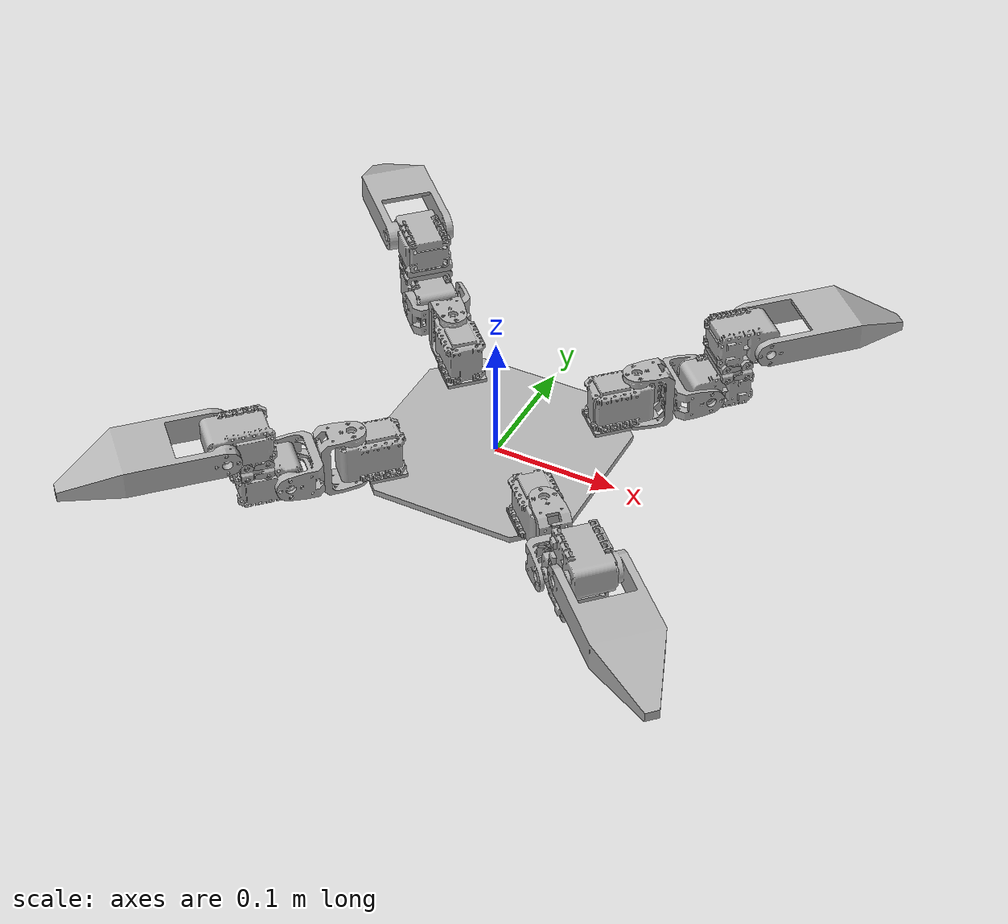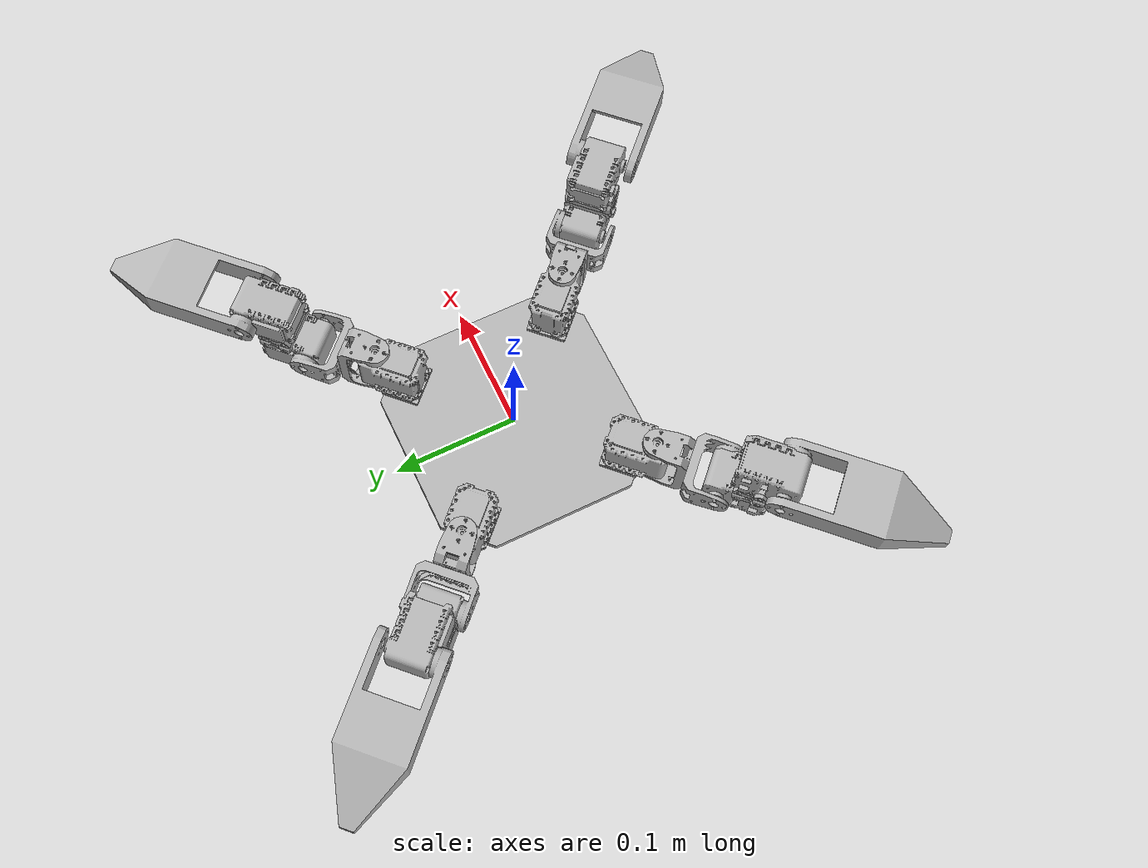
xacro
<?xml version="1.0" ?>
<robot name="Fred" xmlns:xacro="http://www.ros.org/wiki/xacro">

<xacro:include filename="$(find Fred_description)/urdf/materials.xacro" />
<xacro:include filename="$(find Fred_description)/urdf/Fred.trans" />
<xacro:include filename="$(find Fred_description)/urdf/Fred.gazebo" />
<link name="base_link">
  <inertial>
    <origin xyz="-6.332888513373975e-16 1.583222128343494e-17 0.0025" rpy="0 0 0"/>
    <mass value="0.17061404182695633"/>
    <inertia ixx="0.000396" iyy="0.000396" izz="0.000791" ixy="0.0" iyz="0.0" ixz="0.0"/>
  </inertial>
  <visual>
    <origin xyz="0 0 0" rpy="0 0 0"/>
    <geometry>
      <mesh filename="package://Fred_description/meshes/base_link.stl" scale="0.001 0.001 0.001"/>
    </geometry>
    <material name="silver"/>
  </visual>
  <collision>
    <origin xyz="0 0 0" rpy="0 0 0"/>
    <geometry>
      <mesh filename="package://Fred_description/meshes/base_link.stl" scale="0.001 0.001 0.001"/>
    </geometry>
  </collision>
</link>

<link name="U-Mount_v2__2__1">
  <inertial>
    <origin xyz="-0.0067448158266861374 -0.01234718417331375 0.0015000000000000508" rpy="0 0 0"/>
    <mass value="0.001617858655750926"/>
    <inertia ixx="0.0" iyy="0.0" izz="0.0" ixy="-0.0" iyz="-0.0" ixz="-0.0"/>
  </inertial>
  <visual>
    <origin xyz="-0.067838 0.048746 -0.005" rpy="0 0 0"/>
    <geometry>
      <mesh filename="package://Fred_description/meshes/U-Mount_v2__2__1.stl" scale="0.001 0.001 0.001"/>
    </geometry>
    <material name="silver"/>
  </visual>
  <collision>
    <origin xyz="-0.067838 0.048746 -0.005" rpy="0 0 0"/>
    <geometry>
      <mesh filename="package://Fred_description/meshes/U-Mount_v2__2__1.stl" scale="0.001 0.001 0.001"/>
    </geometry>
  </collision>
</link>

<link name="U-Mount_v2_1">
  <inertial>
    <origin xyz="0.012347184173313812 -0.006744815826686186 0.0015000000000000126" rpy="0 0 0"/>
    <mass value="0.001617858655750926"/>
    <inertia ixx="0.0" iyy="0.0" izz="0.0" ixy="0.0" iyz="0.0" ixz="0.0"/>
  </inertial>
  <visual>
    <origin xyz="-0.048746 -0.067838 -0.005" rpy="0 0 0"/>
    <geometry>
      <mesh filename="package://Fred_description/meshes/U-Mount_v2_1.stl" scale="0.001 0.001 0.001"/>
    </geometry>
    <material name="silver"/>
  </visual>
  <collision>
    <origin xyz="-0.048746 -0.067838 -0.005" rpy="0 0 0"/>
    <geometry>
      <mesh filename="package://Fred_description/meshes/U-Mount_v2_1.stl" scale="0.001 0.001 0.001"/>
    </geometry>
  </collision>
</link>

<link name="U-Mount_v2__1__1">
  <inertial>
    <origin xyz="0.006744815826686151 0.012347184173313812 0.001500000000000003" rpy="0 0 0"/>
    <mass value="0.001617858655750926"/>
    <inertia ixx="0.0" iyy="0.0" izz="0.0" ixy="-0.0" iyz="0.0" ixz="-0.0"/>
  </inertial>
  <visual>
    <origin xyz="0.067838 -0.048746 -0.005" rpy="0 0 0"/>
    <geometry>
      <mesh filename="package://Fred_description/meshes/U-Mount_v2__1__1.stl" scale="0.001 0.001 0.001"/>
    </geometry>
    <material name="silver"/>
  </visual>
  <collision>
    <origin xyz="0.067838 -0.048746 -0.005" rpy="0 0 0"/>
    <geometry>
      <mesh filename="package://Fred_description/meshes/U-Mount_v2__1__1.stl" scale="0.001 0.001 0.001"/>
    </geometry>
  </collision>
</link>

<link name="U-Mount_v2__3__1">
  <inertial>
    <origin xyz="-0.012347184173313736 0.006744815826686151 0.0015000000000000326" rpy="0 0 0"/>
    <mass value="0.001617858655750926"/>
    <inertia ixx="0.0" iyy="0.0" izz="0.0" ixy="0.0" iyz="0.0" ixz="-0.0"/>
  </inertial>
  <visual>
    <origin xyz="0.048746 0.067838 -0.005" rpy="0 0 0"/>
    <geometry>
      <mesh filename="package://Fred_description/meshes/U-Mount_v2__3__1.stl" scale="0.001 0.001 0.001"/>
    </geometry>
    <material name="silver"/>
  </visual>
  <collision>
    <origin xyz="0.048746 0.067838 -0.005" rpy="0 0 0"/>
    <geometry>
      <mesh filename="package://Fred_description/meshes/U-Mount_v2__3__1.stl" scale="0.001 0.001 0.001"/>
    </geometry>
  </collision>
</link>

<link name="AX-12A_v2__2__1">
  <inertial>
    <origin xyz="-0.008415635260180326 -0.010676357629209765 0.01645664033601793" rpy="0 0 0"/>
    <mass value="0.04345725719437503"/>
    <inertia ixx="9e-06" iyy="9e-06" izz="1.1e-05" ixy="3e-06" iyz="-0.0" ixz="0.0"/>
  </inertial>
  <visual>
    <origin xyz="-0.079152 0.06006 -0.008" rpy="0 0 0"/>
    <geometry>
      <mesh filename="package://Fred_description/meshes/AX-12A_v2__2__1.stl" scale="0.001 0.001 0.001"/>
    </geometry>
    <material name="silver"/>
  </visual>
  <collision>
    <origin xyz="-0.079152 0.06006 -0.008" rpy="0 0 0"/>
    <geometry>
      <mesh filename="package://Fred_description/meshes/AX-12A_v2__2__1.stl" scale="0.001 0.001 0.001"/>
    </geometry>
  </collision>
</link>

<link name="AX-12A_v2__3__1">
  <inertial>
    <origin xyz="0.010676357629209932 -0.008415635260180396 0.016456640336017986" rpy="0 0 0"/>
    <mass value="0.04345725719437503"/>
    <inertia ixx="9e-06" iyy="9e-06" izz="1.1e-05" ixy="-3e-06" iyz="0.0" ixz="0.0"/>
  </inertial>
  <visual>
    <origin xyz="-0.06006 -0.079152 -0.008" rpy="0 0 0"/>
    <geometry>
      <mesh filename="package://Fred_description/meshes/AX-12A_v2__3__1.stl" scale="0.001 0.001 0.001"/>
    </geometry>
    <material name="silver"/>
  </visual>
  <collision>
    <origin xyz="-0.06006 -0.079152 -0.008" rpy="0 0 0"/>
    <geometry>
      <mesh filename="package://Fred_description/meshes/AX-12A_v2__3__1.stl" scale="0.001 0.001 0.001"/>
    </geometry>
  </collision>
</link>

<link name="AX-12A_v2__10__1">
  <inertial>
    <origin xyz="-0.010676364739819713 -0.00841564237079008 0.016456640336017975" rpy="0 0 0"/>
    <mass value="0.04345725719437503"/>
    <inertia ixx="9e-06" iyy="9e-06" izz="1.1e-05" ixy="3e-06" iyz="0.0" ixz="-0.0"/>
  </inertial>
  <visual>
    <origin xyz="0.06006 -0.079152 -0.008" rpy="0 0 0"/>
    <geometry>
      <mesh filename="package://Fred_description/meshes/AX-12A_v2__10__1.stl" scale="0.001 0.001 0.001"/>
    </geometry>
    <material name="silver"/>
  </visual>
  <collision>
    <origin xyz="0.06006 -0.079152 -0.008" rpy="0 0 0"/>
    <geometry>
      <mesh filename="package://Fred_description/meshes/AX-12A_v2__10__1.stl" scale="0.001 0.001 0.001"/>
    </geometry>
  </collision>
</link>

<link name="AX-12A_v2__9__1">
  <inertial>
    <origin xyz="0.008415642370790205 -0.0106763647398197 0.01645664033601802" rpy="0 0 0"/>
    <mass value="0.04345725719437503"/>
    <inertia ixx="9e-06" iyy="9e-06" izz="1.1e-05" ixy="-3e-06" iyz="-0.0" ixz="-0.0"/>
  </inertial>
  <visual>
    <origin xyz="0.079152 0.06006 -0.008" rpy="0 0 0"/>
    <geometry>
      <mesh filename="package://Fred_description/meshes/AX-12A_v2__9__1.stl" scale="0.001 0.001 0.001"/>
    </geometry>
    <material name="silver"/>
  </visual>
  <collision>
    <origin xyz="0.079152 0.06006 -0.008" rpy="0 0 0"/>
    <geometry>
      <mesh filename="package://Fred_description/meshes/AX-12A_v2__9__1.stl" scale="0.001 0.001 0.001"/>
    </geometry>
  </collision>
</link>

<link name="F2_Frame_with_Horn_v3__4__1">
  <inertial>
    <origin xyz="-0.008866141921158532 -0.008868361448647291 -0.010847674499923382" rpy="0 0 0"/>
    <mass value="0.011624112572770259"/>
    <inertia ixx="5e-06" iyy="5e-06" izz="2e-06" ixy="-0.0" iyz="-0.0" ixz="-0.0"/>
  </inertial>
  <visual>
    <origin xyz="0.080036 0.080036 -0.03775" rpy="0 0 0"/>
    <geometry>
      <mesh filename="package://Fred_description/meshes/F2_Frame_with_Horn_v3__4__1.stl" scale="0.001 0.001 0.001"/>
    </geometry>
    <material name="silver"/>
  </visual>
  <collision>
    <origin xyz="0.080036 0.080036 -0.03775" rpy="0 0 0"/>
    <geometry>
      <mesh filename="package://Fred_description/meshes/F2_Frame_with_Horn_v3__4__1.stl" scale="0.001 0.001 0.001"/>
    </geometry>
  </collision>
</link>

<link name="F2_Frame_with_Horn_v3__5__1">
  <inertial>
    <origin xyz="0.00886836144864725 -0.008866141921158435 -0.010847674499923628" rpy="0 0 0"/>
    <mass value="0.011624112572770259"/>
    <inertia ixx="5e-06" iyy="5e-06" izz="2e-06" ixy="0.0" iyz="-0.0" ixz="0.0"/>
  </inertial>
  <visual>
    <origin xyz="-0.080036 0.080036 -0.03775" rpy="0 0 0"/>
    <geometry>
      <mesh filename="package://Fred_description/meshes/F2_Frame_with_Horn_v3__5__1.stl" scale="0.001 0.001 0.001"/>
    </geometry>
    <material name="silver"/>
  </visual>
  <collision>
    <origin xyz="-0.080036 0.080036 -0.03775" rpy="0 0 0"/>
    <geometry>
      <mesh filename="package://Fred_description/meshes/F2_Frame_with_Horn_v3__5__1.stl" scale="0.001 0.001 0.001"/>
    </geometry>
  </collision>
</link>

<link name="F2_Frame_with_Horn_v3__1__1">
  <inertial>
    <origin xyz="0.008866141921158657 0.008868361448647222 -0.010847674499923417" rpy="0 0 0"/>
    <mass value="0.011624112572770259"/>
    <inertia ixx="5e-06" iyy="5e-06" izz="2e-06" ixy="-0.0" iyz="0.0" ixz="0.0"/>
  </inertial>
  <visual>
    <origin xyz="-0.080036 -0.080036 -0.03775" rpy="0 0 0"/>
    <geometry>
      <mesh filename="package://Fred_description/meshes/F2_Frame_with_Horn_v3__1__1.stl" scale="0.001 0.001 0.001"/>
    </geometry>
    <material name="silver"/>
  </visual>
  <collision>
    <origin xyz="-0.080036 -0.080036 -0.03775" rpy="0 0 0"/>
    <geometry>
      <mesh filename="package://Fred_description/meshes/F2_Frame_with_Horn_v3__1__1.stl" scale="0.001 0.001 0.001"/>
    </geometry>
  </collision>
</link>

<link name="F2_Frame_with_Horn_v3_1">
  <inertial>
    <origin xyz="-0.008868361448647374 0.00886614192115863 -0.0108476744999234" rpy="0 0 0"/>
    <mass value="0.011624112572770259"/>
    <inertia ixx="5e-06" iyy="5e-06" izz="2e-06" ixy="0.0" iyz="0.0" ixz="-0.0"/>
  </inertial>
  <visual>
    <origin xyz="0.080036 -0.080036 -0.03775" rpy="0 0 0"/>
    <geometry>
      <mesh filename="package://Fred_description/meshes/F2_Frame_with_Horn_v3_1.stl" scale="0.001 0.001 0.001"/>
    </geometry>
    <material name="silver"/>
  </visual>
  <collision>
    <origin xyz="0.080036 -0.080036 -0.03775" rpy="0 0 0"/>
    <geometry>
      <mesh filename="package://Fred_description/meshes/F2_Frame_with_Horn_v3_1.stl" scale="0.001 0.001 0.001"/>
    </geometry>
  </collision>
</link>

<link name="F2_Frame_with_Horn_v3__6__1">
  <inertial>
    <origin xyz="-0.007429443557329038 -0.012312221768970719 -0.007998750641466844" rpy="0 0 0"/>
    <mass value="0.011624112572770259"/>
    <inertia ixx="4e-06" iyy="3e-06" izz="5e-06" ixy="1e-06" iyz="-0.0" ixz="-0.0"/>
  </inertial>
  <visual>
    <origin xyz="0.098774 0.098774 -0.03145" rpy="0 0 0"/>
    <geometry>
      <mesh filename="package://Fred_description/meshes/F2_Frame_with_Horn_v3__6__1.stl" scale="0.001 0.001 0.001"/>
    </geometry>
    <material name="silver"/>
  </visual>
  <collision>
    <origin xyz="0.098774 0.098774 -0.03145" rpy="0 0 0"/>
    <geometry>
      <mesh filename="package://Fred_description/meshes/F2_Frame_with_Horn_v3__6__1.stl" scale="0.001 0.001 0.001"/>
    </geometry>
  </collision>
</link>

<link name="F2_Frame_with_Horn_v3__2__1">
  <inertial>
    <origin xyz="-0.012312221768970899 0.007429443557329177 -0.007998750641466774" rpy="0 0 0"/>
    <mass value="0.011624112572770259"/>
    <inertia ixx="3e-06" iyy="4e-06" izz="5e-06" ixy="-1e-06" iyz="0.0" ixz="-0.0"/>
  </inertial>
  <visual>
    <origin xyz="0.098774 -0.098774 -0.03145" rpy="0 0 0"/>
    <geometry>
      <mesh filename="package://Fred_description/meshes/F2_Frame_with_Horn_v3__2__1.stl" scale="0.001 0.001 0.001"/>
    </geometry>
    <material name="silver"/>
  </visual>
  <collision>
    <origin xyz="0.098774 -0.098774 -0.03145" rpy="0 0 0"/>
    <geometry>
      <mesh filename="package://Fred_description/meshes/F2_Frame_with_Horn_v3__2__1.stl" scale="0.001 0.001 0.001"/>
    </geometry>
  </collision>
</link>

<link name="F2_Frame_with_Horn_v3__3__1">
  <inertial>
    <origin xyz="0.007429443557329191 0.01231222176897065 -0.00799875064146684" rpy="0 0 0"/>
    <mass value="0.011624112572770259"/>
    <inertia ixx="4e-06" iyy="3e-06" izz="5e-06" ixy="1e-06" iyz="0.0" ixz="0.0"/>
  </inertial>
  <visual>
    <origin xyz="-0.098774 -0.098774 -0.03145" rpy="0 0 0"/>
    <geometry>
      <mesh filename="package://Fred_description/meshes/F2_Frame_with_Horn_v3__3__1.stl" scale="0.001 0.001 0.001"/>
    </geometry>
    <material name="silver"/>
  </visual>
  <collision>
    <origin xyz="-0.098774 -0.098774 -0.03145" rpy="0 0 0"/>
    <geometry>
      <mesh filename="package://Fred_description/meshes/F2_Frame_with_Horn_v3__3__1.stl" scale="0.001 0.001 0.001"/>
    </geometry>
  </collision>
</link>

<link name="F2_Frame_with_Horn_v3__7__1">
  <inertial>
    <origin xyz="0.01231222176897058 -0.007429443557328802 -0.007998750641467135" rpy="0 0 0"/>
    <mass value="0.011624112572770259"/>
    <inertia ixx="3e-06" iyy="4e-06" izz="5e-06" ixy="-1e-06" iyz="-0.0" ixz="0.0"/>
  </inertial>
  <visual>
    <origin xyz="-0.098774 0.098774 -0.03145" rpy="0 0 0"/>
    <geometry>
      <mesh filename="package://Fred_description/meshes/F2_Frame_with_Horn_v3__7__1.stl" scale="0.001 0.001 0.001"/>
    </geometry>
    <material name="silver"/>
  </visual>
  <collision>
    <origin xyz="-0.098774 0.098774 -0.03145" rpy="0 0 0"/>
    <geometry>
      <mesh filename="package://Fred_description/meshes/F2_Frame_with_Horn_v3__7__1.stl" scale="0.001 0.001 0.001"/>
    </geometry>
  </collision>
</link>

<link name="AX-12A_v2__8__1">
  <inertial>
    <origin xyz="-0.018698694621870376 0.00010024829479443609 -3.1505644476972905e-07" rpy="0 0 0"/>
    <mass value="0.04345725719437503"/>
    <inertia ixx="9e-06" iyy="8e-06" izz="1.2e-05" ixy="-2e-06" iyz="-0.0" ixz="-0.0"/>
  </inertial>
  <visual>
    <origin xyz="0.107401 0.127624 -0.02345" rpy="0 0 0"/>
    <geometry>
      <mesh filename="package://Fred_description/meshes/AX-12A_v2__8__1.stl" scale="0.001 0.001 0.001"/>
    </geometry>
    <material name="silver"/>
  </visual>
  <collision>
    <origin xyz="0.107401 0.127624 -0.02345" rpy="0 0 0"/>
    <geometry>
      <mesh filename="package://Fred_description/meshes/AX-12A_v2__8__1.stl" scale="0.001 0.001 0.001"/>
    </geometry>
  </collision>
</link>

<link name="AX-12A_v2_1">
  <inertial>
    <origin xyz="0.00010024829479407527 0.01869869462187057 -3.1505644463095117e-07" rpy="0 0 0"/>
    <mass value="0.04345725719437503"/>
    <inertia ixx="8e-06" iyy="9e-06" izz="1.2e-05" ixy="2e-06" iyz="0.0" ixz="-0.0"/>
  </inertial>
  <visual>
    <origin xyz="0.127624 -0.107401 -0.02345" rpy="0 0 0"/>
    <geometry>
      <mesh filename="package://Fred_description/meshes/AX-12A_v2_1.stl" scale="0.001 0.001 0.001"/>
    </geometry>
    <material name="silver"/>
  </visual>
  <collision>
    <origin xyz="0.127624 -0.107401 -0.02345" rpy="0 0 0"/>
    <geometry>
      <mesh filename="package://Fred_description/meshes/AX-12A_v2_1.stl" scale="0.001 0.001 0.001"/>
    </geometry>
  </collision>
</link>

<link name="AX-12A_v2__1__1">
  <inertial>
    <origin xyz="0.018698694621870626 -0.00010024829479438058 -3.150564447350346e-07" rpy="0 0 0"/>
    <mass value="0.04345725719437503"/>
    <inertia ixx="9e-06" iyy="8e-06" izz="1.2e-05" ixy="-2e-06" iyz="0.0" ixz="0.0"/>
  </inertial>
  <visual>
    <origin xyz="-0.107401 -0.127624 -0.02345" rpy="0 0 0"/>
    <geometry>
      <mesh filename="package://Fred_description/meshes/AX-12A_v2__1__1.stl" scale="0.001 0.001 0.001"/>
    </geometry>
    <material name="silver"/>
  </visual>
  <collision>
    <origin xyz="-0.107401 -0.127624 -0.02345" rpy="0 0 0"/>
    <geometry>
      <mesh filename="package://Fred_description/meshes/AX-12A_v2__1__1.stl" scale="0.001 0.001 0.001"/>
    </geometry>
  </collision>
</link>

<link name="AX-12A_v2__7__1">
  <inertial>
    <origin xyz="-0.00010024829479432507 -0.018698694621870293 -3.1505644519994047e-07" rpy="0 0 0"/>
    <mass value="0.04345725719437503"/>
    <inertia ixx="8e-06" iyy="9e-06" izz="1.2e-05" ixy="2e-06" iyz="-0.0" ixz="0.0"/>
  </inertial>
  <visual>
    <origin xyz="-0.127624 0.107401 -0.02345" rpy="0 0 0"/>
    <geometry>
      <mesh filename="package://Fred_description/meshes/AX-12A_v2__7__1.stl" scale="0.001 0.001 0.001"/>
    </geometry>
    <material name="silver"/>
  </visual>
  <collision>
    <origin xyz="-0.127624 0.107401 -0.02345" rpy="0 0 0"/>
    <geometry>
      <mesh filename="package://Fred_description/meshes/AX-12A_v2__7__1.stl" scale="0.001 0.001 0.001"/>
    </geometry>
  </collision>
</link>

<link name="Connection_Mount_v2__2__1">
  <inertial>
    <origin xyz="-0.00565568348611295 0.016972046386872247 0.003095946043759727" rpy="0 0 0"/>
    <mass value="0.025354039664650947"/>
    <inertia ixx="3e-06" iyy="3e-06" izz="5e-06" ixy="1e-06" iyz="0.0" ixz="0.0"/>
  </inertial>
  <visual>
    <origin xyz="0.127553 0.150959 -0.03695" rpy="0 0 0"/>
    <geometry>
      <mesh filename="package://Fred_description/meshes/Connection_Mount_v2__2__1.stl" scale="0.001 0.001 0.001"/>
    </geometry>
    <material name="silver"/>
  </visual>
  <collision>
    <origin xyz="0.127553 0.150959 -0.03695" rpy="0 0 0"/>
    <geometry>
      <mesh filename="package://Fred_description/meshes/Connection_Mount_v2__2__1.stl" scale="0.001 0.001 0.001"/>
    </geometry>
  </collision>
</link>

<link name="Connection_Mount_v2__7__1">
  <inertial>
    <origin xyz="0.016972148681356394 -0.0056555811916346455 0.003095946043759734" rpy="0 0 0"/>
    <mass value="0.025354039664650947"/>
    <inertia ixx="3e-06" iyy="3e-06" izz="5e-06" ixy="1e-06" iyz="0.0" ixz="0.0"/>
  </inertial>
  <visual>
    <origin xyz="-0.116239 -0.139645 -0.03695" rpy="0 0 0"/>
    <geometry>
      <mesh filename="package://Fred_description/meshes/Connection_Mount_v2__7__1.stl" scale="0.001 0.001 0.001"/>
    </geometry>
    <material name="silver"/>
  </visual>
  <collision>
    <origin xyz="-0.116239 -0.139645 -0.03695" rpy="0 0 0"/>
    <geometry>
      <mesh filename="package://Fred_description/meshes/Connection_Mount_v2__7__1.stl" scale="0.001 0.001 0.001"/>
    </geometry>
  </collision>
</link>

<link name="Connection_Mount_v2__1__1">
  <inertial>
    <origin xyz="0.0056584188083653175 0.01696885131864395 0.0030959460437592276" rpy="0 0 0"/>
    <mass value="0.025354039664650947"/>
    <inertia ixx="3e-06" iyy="3e-06" izz="5e-06" ixy="-1e-06" iyz="-0.0" ixz="0.0"/>
  </inertial>
  <visual>
    <origin xyz="-0.128331 0.15018 -0.03695" rpy="0 0 0"/>
    <geometry>
      <mesh filename="package://Fred_description/meshes/Connection_Mount_v2__1__1.stl" scale="0.001 0.001 0.001"/>
    </geometry>
    <material name="silver"/>
  </visual>
  <collision>
    <origin xyz="-0.128331 0.15018 -0.03695" rpy="0 0 0"/>
    <geometry>
      <mesh filename="package://Fred_description/meshes/Connection_Mount_v2__1__1.stl" scale="0.001 0.001 0.001"/>
    </geometry>
  </collision>
</link>

<link name="Connection_Mount_v2__3__1">
  <inertial>
    <origin xyz="0.005658046386871868 0.01696968348611301 0.003095946043759887" rpy="0 0 0"/>
    <mass value="0.025354039664650947"/>
    <inertia ixx="3e-06" iyy="3e-06" izz="5e-06" ixy="-1e-06" iyz="-0.0" ixz="0.0"/>
  </inertial>
  <visual>
    <origin xyz="0.139645 -0.116239 -0.03695" rpy="0 0 0"/>
    <geometry>
      <mesh filename="package://Fred_description/meshes/Connection_Mount_v2__3__1.stl" scale="0.001 0.001 0.001"/>
    </geometry>
    <material name="silver"/>
  </visual>
  <collision>
    <origin xyz="0.139645 -0.116239 -0.03695" rpy="0 0 0"/>
    <geometry>
      <mesh filename="package://Fred_description/meshes/Connection_Mount_v2__3__1.stl" scale="0.001 0.001 0.001"/>
    </geometry>
  </collision>
</link>

<link name="Connection_Mount_v2__6__1">
  <inertial>
    <origin xyz="-0.005658046386874949 0.005658316513884265 0.002403413787430024" rpy="0 0 0"/>
    <mass value="0.025354039664650947"/>
    <inertia ixx="3e-06" iyy="3e-06" izz="5e-06" ixy="-1e-06" iyz="-0.0" ixz="0.0"/>
  </inertial>
  <visual>
    <origin xyz="-0.139645 0.138867 -0.04245" rpy="0 0 0"/>
    <geometry>
      <mesh filename="package://Fred_description/meshes/Connection_Mount_v2__6__1.stl" scale="0.001 0.001 0.001"/>
    </geometry>
    <material name="silver"/>
  </visual>
  <collision>
    <origin xyz="-0.139645 0.138867 -0.04245" rpy="0 0 0"/>
    <geometry>
      <mesh filename="package://Fred_description/meshes/Connection_Mount_v2__6__1.stl" scale="0.001 0.001 0.001"/>
    </geometry>
  </collision>
</link>

<link name="Connection_Mount_v2__5__1">
  <inertial>
    <origin xyz="-0.005658316513883904 -0.005658046386874949 0.0024034137874304404" rpy="0 0 0"/>
    <mass value="0.025354039664650947"/>
    <inertia ixx="3e-06" iyy="3e-06" izz="5e-06" ixy="1e-06" iyz="0.0" ixz="0.0"/>
  </inertial>
  <visual>
    <origin xyz="-0.138867 -0.139645 -0.04245" rpy="0 0 0"/>
    <geometry>
      <mesh filename="package://Fred_description/meshes/Connection_Mount_v2__5__1.stl" scale="0.001 0.001 0.001"/>
    </geometry>
    <material name="silver"/>
  </visual>
  <collision>
    <origin xyz="-0.138867 -0.139645 -0.04245" rpy="0 0 0"/>
    <geometry>
      <mesh filename="package://Fred_description/meshes/Connection_Mount_v2__5__1.stl" scale="0.001 0.001 0.001"/>
    </geometry>
  </collision>
</link>

<link name="Connection_Mount_v2_1">
  <inertial>
    <origin xyz="0.005658046386874727 -0.0056583165138840985 0.002403413787430475" rpy="0 0 0"/>
    <mass value="0.025354039664650947"/>
    <inertia ixx="3e-06" iyy="3e-06" izz="5e-06" ixy="-1e-06" iyz="0.0" ixz="-0.0"/>
  </inertial>
  <visual>
    <origin xyz="0.139645 -0.138867 -0.04245" rpy="0 0 0"/>
    <geometry>
      <mesh filename="package://Fred_description/meshes/Connection_Mount_v2_1.stl" scale="0.001 0.001 0.001"/>
    </geometry>
    <material name="silver"/>
  </visual>
  <collision>
    <origin xyz="0.139645 -0.138867 -0.04245" rpy="0 0 0"/>
    <geometry>
      <mesh filename="package://Fred_description/meshes/Connection_Mount_v2_1.stl" scale="0.001 0.001 0.001"/>
    </geometry>
  </collision>
</link>

<link name="Connection_Mount_v2__4__1">
  <inertial>
    <origin xyz="0.0056583165138840985 0.005658046386875087 0.0024034137874304334" rpy="0 0 0"/>
    <mass value="0.025354039664650947"/>
    <inertia ixx="3e-06" iyy="3e-06" izz="5e-06" ixy="1e-06" iyz="-0.0" ixz="-0.0"/>
  </inertial>
  <visual>
    <origin xyz="0.138867 0.139645 -0.04245" rpy="0 0 0"/>
    <geometry>
      <mesh filename="package://Fred_description/meshes/Connection_Mount_v2__4__1.stl" scale="0.001 0.001 0.001"/>
    </geometry>
    <material name="silver"/>
  </visual>
  <collision>
    <origin xyz="0.138867 0.139645 -0.04245" rpy="0 0 0"/>
    <geometry>
      <mesh filename="package://Fred_description/meshes/Connection_Mount_v2__4__1.stl" scale="0.001 0.001 0.001"/>
    </geometry>
  </collision>
</link>

<link name="AX-12A_v2__4__1">
  <inertial>
    <origin xyz="0.01276740767261142 0.010505649410724571 0.013499674887634129" rpy="0 0 0"/>
    <mass value="0.04345725719437503"/>
    <inertia ixx="9e-06" iyy="8e-06" izz="1.2e-05" ixy="2e-06" iyz="-0.0" ixz="0.0"/>
  </inertial>
  <visual>
    <origin xyz="-0.128331 0.15018 -0.04795" rpy="0 0 0"/>
    <geometry>
      <mesh filename="package://Fred_description/meshes/AX-12A_v2__4__1.stl" scale="0.001 0.001 0.001"/>
    </geometry>
    <material name="silver"/>
  </visual>
  <collision>
    <origin xyz="-0.128331 0.15018 -0.04795" rpy="0 0 0"/>
    <geometry>
      <mesh filename="package://Fred_description/meshes/AX-12A_v2__4__1.stl" scale="0.001 0.001 0.001"/>
    </geometry>
  </collision>
</link>

<link name="AX-12A_v2__5__1">
  <inertial>
    <origin xyz="-0.01050564941072396 0.012767407672610837 0.013499674887634698" rpy="0 0 0"/>
    <mass value="0.04345725719437503"/>
    <inertia ixx="8e-06" iyy="9e-06" izz="1.2e-05" ixy="-2e-06" iyz="0.0" ixz="0.0"/>
  </inertial>
  <visual>
    <origin xyz="-0.15018 -0.128331 -0.04795" rpy="0 0 0"/>
    <geometry>
      <mesh filename="package://Fred_description/meshes/AX-12A_v2__5__1.stl" scale="0.001 0.001 0.001"/>
    </geometry>
    <material name="silver"/>
  </visual>
  <collision>
    <origin xyz="-0.15018 -0.128331 -0.04795" rpy="0 0 0"/>
    <geometry>
      <mesh filename="package://Fred_description/meshes/AX-12A_v2__5__1.stl" scale="0.001 0.001 0.001"/>
    </geometry>
  </collision>
</link>

<link name="AX-12A_v2__6__1">
  <inertial>
    <origin xyz="-0.012767407672610975 -0.010505649410724516 0.013499674887634788" rpy="0 0 0"/>
    <mass value="0.04345725719437503"/>
    <inertia ixx="9e-06" iyy="8e-06" izz="1.2e-05" ixy="2e-06" iyz="0.0" ixz="-0.0"/>
  </inertial>
  <visual>
    <origin xyz="0.128331 -0.15018 -0.04795" rpy="0 0 0"/>
    <geometry>
      <mesh filename="package://Fred_description/meshes/AX-12A_v2__6__1.stl" scale="0.001 0.001 0.001"/>
    </geometry>
    <material name="silver"/>
  </visual>
  <collision>
    <origin xyz="0.128331 -0.15018 -0.04795" rpy="0 0 0"/>
    <geometry>
      <mesh filename="package://Fred_description/meshes/AX-12A_v2__6__1.stl" scale="0.001 0.001 0.001"/>
    </geometry>
  </collision>
</link>

<link name="AX-12A_v2__11__1">
  <inertial>
    <origin xyz="0.010505649410724155 -0.012767407672610809 0.01349967488763467" rpy="0 0 0"/>
    <mass value="0.04345725719437503"/>
    <inertia ixx="8e-06" iyy="9e-06" izz="1.2e-05" ixy="-2e-06" iyz="-0.0" ixz="-0.0"/>
  </inertial>
  <visual>
    <origin xyz="0.15018 0.128331 -0.04795" rpy="0 0 0"/>
    <geometry>
      <mesh filename="package://Fred_description/meshes/AX-12A_v2__11__1.stl" scale="0.001 0.001 0.001"/>
    </geometry>
    <material name="silver"/>
  </visual>
  <collision>
    <origin xyz="0.15018 0.128331 -0.04795" rpy="0 0 0"/>
    <geometry>
      <mesh filename="package://Fred_description/meshes/AX-12A_v2__11__1.stl" scale="0.001 0.001 0.001"/>
    </geometry>
  </collision>
</link>

<link name="Finger_with_Horn_v3__2__1">
  <inertial>
    <origin xyz="-0.054270581194146655 -0.03476621990377737 -0.0016312128257605918" rpy="0 0 0"/>
    <mass value="0.06747788765266144"/>
    <inertia ixx="4.3e-05" iyy="4.7e-05" izz="8.3e-05" ixy="-2.2e-05" iyz="-4e-06" ixz="-4e-06"/>
  </inertial>
  <visual>
    <origin xyz="0.139574 0.159798 -0.06145" rpy="0 0 0"/>
    <geometry>
      <mesh filename="package://Fred_description/meshes/Finger_with_Horn_v3__2__1.stl" scale="0.001 0.001 0.001"/>
    </geometry>
    <material name="silver"/>
  </visual>
  <collision>
    <origin xyz="0.139574 0.159798 -0.06145" rpy="0 0 0"/>
    <geometry>
      <mesh filename="package://Fred_description/meshes/Finger_with_Horn_v3__2__1.stl" scale="0.001 0.001 0.001"/>
    </geometry>
  </collision>
</link>

<link name="Finger_with_Horn_v3__1__1">
  <inertial>
    <origin xyz="0.03476621990377837 -0.05427058119414599 -0.0016312128257624375" rpy="0 0 0"/>
    <mass value="0.06747788765266144"/>
    <inertia ixx="4.7e-05" iyy="4.3e-05" izz="8.3e-05" ixy="2.2e-05" iyz="-4e-06" ixz="4e-06"/>
  </inertial>
  <visual>
    <origin xyz="-0.159798 0.139574 -0.06145" rpy="0 0 0"/>
    <geometry>
      <mesh filename="package://Fred_description/meshes/Finger_with_Horn_v3__1__1.stl" scale="0.001 0.001 0.001"/>
    </geometry>
    <material name="silver"/>
  </visual>
  <collision>
    <origin xyz="-0.159798 0.139574 -0.06145" rpy="0 0 0"/>
    <geometry>
      <mesh filename="package://Fred_description/meshes/Finger_with_Horn_v3__1__1.stl" scale="0.001 0.001 0.001"/>
    </geometry>
  </collision>
</link>

<link name="Finger_with_Horn_v3__3__1">
  <inertial>
    <origin xyz="0.054270581194147155 0.034766219903777484 -0.0016312128257606542" rpy="0 0 0"/>
    <mass value="0.06747788765266144"/>
    <inertia ixx="4.3e-05" iyy="4.7e-05" izz="8.3e-05" ixy="-2.2e-05" iyz="4e-06" ixz="4e-06"/>
  </inertial>
  <visual>
    <origin xyz="-0.139574 -0.159798 -0.06145" rpy="0 0 0"/>
    <geometry>
      <mesh filename="package://Fred_description/meshes/Finger_with_Horn_v3__3__1.stl" scale="0.001 0.001 0.001"/>
    </geometry>
    <material name="silver"/>
  </visual>
  <collision>
    <origin xyz="-0.139574 -0.159798 -0.06145" rpy="0 0 0"/>
    <geometry>
      <mesh filename="package://Fred_description/meshes/Finger_with_Horn_v3__3__1.stl" scale="0.001 0.001 0.001"/>
    </geometry>
  </collision>
</link>

<link name="Finger_with_Horn_v3_1">
  <inertial>
    <origin xyz="-0.03476621990377776 0.054270581194146156 -0.0016312128257595163" rpy="0 0 0"/>
    <mass value="0.06747788765266144"/>
    <inertia ixx="4.7e-05" iyy="4.3e-05" izz="8.3e-05" ixy="2.2e-05" iyz="4e-06" ixz="-4e-06"/>
  </inertial>
  <visual>
    <origin xyz="0.159798 -0.139574 -0.06145" rpy="0 0 0"/>
    <geometry>
      <mesh filename="package://Fred_description/meshes/Finger_with_Horn_v3_1.stl" scale="0.001 0.001 0.001"/>
    </geometry>
    <material name="silver"/>
  </visual>
  <collision>
    <origin xyz="0.159798 -0.139574 -0.06145" rpy="0 0 0"/>
    <geometry>
      <mesh filename="package://Fred_description/meshes/Finger_with_Horn_v3_1.stl" scale="0.001 0.001 0.001"/>
    </geometry>
  </collision>
</link>

<joint name="Rigid 1" type="fixed">
  <origin xyz="0.067838 -0.048746 0.005" rpy="0 0 0"/>
  <parent link="base_link"/>
  <child link="U-Mount_v2__2__1"/>
</joint>

<joint name="Rigid 2" type="fixed">
  <origin xyz="0.048746 0.067838 0.005" rpy="0 0 0"/>
  <parent link="base_link"/>
  <child link="U-Mount_v2_1"/>
</joint>

<joint name="Rigid 3" type="fixed">
  <origin xyz="-0.067838 0.048746 0.005" rpy="0 0 0"/>
  <parent link="base_link"/>
  <child link="U-Mount_v2__1__1"/>
</joint>

<joint name="Rigid 4" type="fixed">
  <origin xyz="-0.048746 -0.067838 0.005" rpy="0 0 0"/>
  <parent link="base_link"/>
  <child link="U-Mount_v2__3__1"/>
</joint>

<joint name="Rigid 5" type="fixed">
  <origin xyz="0.011314 -0.011314 0.003" rpy="0 0 0"/>
  <parent link="U-Mount_v2__2__1"/>
  <child link="AX-12A_v2__2__1"/>
</joint>

<joint name="Rigid 6" type="fixed">
  <origin xyz="0.011314 0.011314 0.003" rpy="0 0 0"/>
  <parent link="U-Mount_v2_1"/>
  <child link="AX-12A_v2__3__1"/>
</joint>

<joint name="Rigid 7" type="fixed">
  <origin xyz="0.007778 0.030406 0.003" rpy="0 0 0"/>
  <parent link="U-Mount_v2__1__1"/>
  <child link="AX-12A_v2__10__1"/>
</joint>

<joint name="Rigid 8" type="fixed">
  <origin xyz="-0.030406 0.007778 0.003" rpy="0 0 0"/>
  <parent link="U-Mount_v2__3__1"/>
  <child link="AX-12A_v2__9__1"/>
</joint>

<joint name="Revolute 9" type="revolute">
  <origin xyz="-0.000884 -0.019976 0.02975" rpy="0 0 0"/>
  <parent link="AX-12A_v2__9__1"/>
  <child link="F2_Frame_with_Horn_v3__4__1"/>
  <axis xyz="0.0 -0.0 1.0"/>
  <limit upper="1.745329" lower="-1.745329" effort="100" velocity="100"/>
</joint>

<joint name="Revolute 10" type="revolute">
  <origin xyz="0.000884 -0.019976 0.02975" rpy="0 0 0"/>
  <parent link="AX-12A_v2__2__1"/>
  <child link="F2_Frame_with_Horn_v3__5__1"/>
  <axis xyz="0.0 -0.0 1.0"/>
  <limit upper="1.745329" lower="-1.745329" effort="100" velocity="100"/>
</joint>

<joint name="Revolute 11" type="revolute">
  <origin xyz="0.019976 0.000884 0.02975" rpy="0 0 0"/>
  <parent link="AX-12A_v2__3__1"/>
  <child link="F2_Frame_with_Horn_v3__1__1"/>
  <axis xyz="-0.0 0.0 1.0"/>
  <limit upper="1.745329" lower="-1.745329" effort="100" velocity="100"/>
</joint>

<joint name="Revolute 12" type="revolute">
  <origin xyz="-0.019976 0.000884 0.02975" rpy="0 0 0"/>
  <parent link="AX-12A_v2__10__1"/>
  <child link="F2_Frame_with_Horn_v3_1"/>
  <axis xyz="-0.0 -0.0 1.0"/>
  <limit upper="1.745329" lower="-1.745329" effort="100" velocity="100"/>
</joint>

<joint name="Rigid 13" type="fixed">
  <origin xyz="-0.018738 -0.018738 -0.0063" rpy="0 0 0"/>
  <parent link="F2_Frame_with_Horn_v3__4__1"/>
  <child link="F2_Frame_with_Horn_v3__6__1"/>
</joint>

<joint name="Rigid 14" type="fixed">
  <origin xyz="-0.018738 0.018738 -0.0063" rpy="0 0 0"/>
  <parent link="F2_Frame_with_Horn_v3_1"/>
  <child link="F2_Frame_with_Horn_v3__2__1"/>
</joint>

<joint name="Rigid 15" type="fixed">
  <origin xyz="0.018738 0.018738 -0.0063" rpy="0 0 0"/>
  <parent link="F2_Frame_with_Horn_v3__1__1"/>
  <child link="F2_Frame_with_Horn_v3__3__1"/>
</joint>

<joint name="Rigid 16" type="fixed">
  <origin xyz="0.018738 -0.018738 -0.0063" rpy="0 0 0"/>
  <parent link="F2_Frame_with_Horn_v3__5__1"/>
  <child link="F2_Frame_with_Horn_v3__7__1"/>
</joint>

<joint name="Revolute 17" type="revolute">
  <origin xyz="-0.008627 -0.02885 -0.008" rpy="0 0 0"/>
  <parent link="F2_Frame_with_Horn_v3__6__1"/>
  <child link="AX-12A_v2__8__1"/>
  <axis xyz="-0.707107 0.707107 0.0"/>
  <limit upper="1.745329" lower="-1.919862" effort="100" velocity="100"/>
</joint>

<joint name="Revolute 18" type="revolute">
  <origin xyz="-0.02885 0.008627 -0.008" rpy="0 0 0"/>
  <parent link="F2_Frame_with_Horn_v3__2__1"/>
  <child link="AX-12A_v2_1"/>
  <axis xyz="0.707107 0.707107 0.0"/>
  <limit upper="1.745329" lower="-1.745329" effort="100" velocity="100"/>
</joint>

<joint name="Revolute 19" type="revolute">
  <origin xyz="0.008627 0.02885 -0.008" rpy="0 0 0"/>
  <parent link="F2_Frame_with_Horn_v3__3__1"/>
  <child link="AX-12A_v2__1__1"/>
  <axis xyz="0.707107 -0.707107 0.0"/>
  <limit upper="1.745329" lower="-1.745329" effort="100" velocity="100"/>
</joint>

<joint name="Revolute 20" type="revolute">
  <origin xyz="0.02885 -0.008627 -0.008" rpy="0 0 0"/>
  <parent link="F2_Frame_with_Horn_v3__7__1"/>
  <child link="AX-12A_v2__7__1"/>
  <axis xyz="-0.707107 -0.707107 0.0"/>
  <limit upper="1.745329" lower="-1.745329" effort="100" velocity="100"/>
</joint>

<joint name="Rigid 21" type="fixed">
  <origin xyz="-0.020152 -0.023335 0.0135" rpy="0 0 0"/>
  <parent link="AX-12A_v2__8__1"/>
  <child link="Connection_Mount_v2__2__1"/>
</joint>

<joint name="Rigid 22" type="fixed">
  <origin xyz="0.008838 0.012021 0.0135" rpy="0 0 0"/>
  <parent link="AX-12A_v2__1__1"/>
  <child link="Connection_Mount_v2__7__1"/>
</joint>

<joint name="Rigid 23" type="fixed">
  <origin xyz="0.000707 -0.042779 0.0135" rpy="0 0 0"/>
  <parent link="AX-12A_v2__7__1"/>
  <child link="Connection_Mount_v2__1__1"/>
</joint>

<joint name="Rigid 24" type="fixed">
  <origin xyz="-0.012021 0.008838 0.0135" rpy="0 0 0"/>
  <parent link="AX-12A_v2_1"/>
  <child link="Connection_Mount_v2__3__1"/>
</joint>

<joint name="Rigid 25" type="fixed">
  <origin xyz="0.011314 0.011313 0.0055" rpy="0 0 0"/>
  <parent link="Connection_Mount_v2__1__1"/>
  <child link="Connection_Mount_v2__6__1"/>
</joint>

<joint name="Rigid 26" type="fixed">
  <origin xyz="0.022628 0.0 0.0055" rpy="0 0 0"/>
  <parent link="Connection_Mount_v2__7__1"/>
  <child link="Connection_Mount_v2__5__1"/>
</joint>

<joint name="Rigid 27" type="fixed">
  <origin xyz="0.0 0.022628 0.0055" rpy="0 0 0"/>
  <parent link="Connection_Mount_v2__3__1"/>
  <child link="Connection_Mount_v2_1"/>
</joint>

<joint name="Rigid 28" type="fixed">
  <origin xyz="-0.011314 0.011314 0.0055" rpy="0 0 0"/>
  <parent link="Connection_Mount_v2__2__1"/>
  <child link="Connection_Mount_v2__4__1"/>
</joint>

<joint name="Rigid 29" type="fixed">
  <origin xyz="-0.011314 -0.011313 0.0055" rpy="0 0 0"/>
  <parent link="Connection_Mount_v2__6__1"/>
  <child link="AX-12A_v2__4__1"/>
</joint>

<joint name="Rigid 30" type="fixed">
  <origin xyz="0.011313 -0.011314 0.0055" rpy="0 0 0"/>
  <parent link="Connection_Mount_v2__5__1"/>
  <child link="AX-12A_v2__5__1"/>
</joint>

<joint name="Rigid 31" type="fixed">
  <origin xyz="0.011314 0.011313 0.0055" rpy="0 0 0"/>
  <parent link="Connection_Mount_v2_1"/>
  <child link="AX-12A_v2__6__1"/>
</joint>

<joint name="Rigid 32" type="fixed">
  <origin xyz="-0.011313 0.011314 0.0055" rpy="0 0 0"/>
  <parent link="Connection_Mount_v2__4__1"/>
  <child link="AX-12A_v2__11__1"/>
</joint>

<joint name="Revolute 33" type="revolute">
  <origin xyz="0.010606 -0.031467 0.0135" rpy="0 0 0"/>
  <parent link="AX-12A_v2__11__1"/>
  <child link="Finger_with_Horn_v3__2__1"/>
  <axis xyz="0.707107 -0.707107 0.0"/>
  <limit upper="1.745329" lower="-2.356194" effort="100" velocity="100"/>
</joint>

<joint name="Revolute 34" type="revolute">
  <origin xyz="0.031467 0.010606 0.0135" rpy="0 0 0"/>
  <parent link="AX-12A_v2__4__1"/>
  <child link="Finger_with_Horn_v3__1__1"/>
  <axis xyz="0.707107 0.707107 -0.0"/>
  <limit upper="1.745329" lower="-2.356194" effort="100" velocity="100"/>
</joint>

<joint name="Revolute 35" type="revolute">
  <origin xyz="-0.010606 0.031467 0.0135" rpy="0 0 0"/>
  <parent link="AX-12A_v2__5__1"/>
  <child link="Finger_with_Horn_v3__3__1"/>
  <axis xyz="-0.707107 0.707107 0.0"/>
  <limit upper="1.745329" lower="-2.356194" effort="100" velocity="100"/>
</joint>

<joint name="Revolute 36" type="revolute">
  <origin xyz="-0.031467 -0.010606 0.0135" rpy="0 0 0"/>
  <parent link="AX-12A_v2__6__1"/>
  <child link="Finger_with_Horn_v3_1"/>
  <axis xyz="-0.707107 -0.707107 -0.0"/>
  <limit upper="1.745329" lower="-2.356194" effort="100" velocity="100"/>
</joint>

</robot>

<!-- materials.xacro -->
<robot name="Fred" xmlns:xacro="http://www.ros.org/wiki/xacro" >

<material name="silver">
  <color rgba="0.700 0.700 0.700 1.000"/>
</material>

</robot>

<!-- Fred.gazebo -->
<robot name="Fred" xmlns:xacro="http://www.ros.org/wiki/xacro" >

<xacro:property name="body_color" value="Gazebo/Silver" />

<gazebo>
  <plugin name="control" filename="libgazebo_ros_control.so"/>
</gazebo>
<gazebo reference="base_link">
  <material>${body_color}</material>
  <mu1>0.2</mu1>
  <mu2>0.2</mu2>
  <selfCollide>true</selfCollide>
  <gravity>true</gravity>
</gazebo>

<gazebo reference="U-Mount_v2__2__1">
  <material>${body_color}</material>
  <mu1>0.2</mu1>
  <mu2>0.2</mu2>
  <selfCollide>true</selfCollide>
</gazebo>

<gazebo reference="U-Mount_v2_1">
  <material>${body_color}</material>
  <mu1>0.2</mu1>
  <mu2>0.2</mu2>
  <selfCollide>true</selfCollide>
</gazebo>

<gazebo reference="U-Mount_v2__1__1">
  <material>${body_color}</material>
  <mu1>0.2</mu1>
  <mu2>0.2</mu2>
  <selfCollide>true</selfCollide>
</gazebo>

<gazebo reference="U-Mount_v2__3__1">
  <material>${body_color}</material>
  <mu1>0.2</mu1>
  <mu2>0.2</mu2>
  <selfCollide>true</selfCollide>
</gazebo>

<gazebo reference="AX-12A_v2__2__1">
  <material>${body_color}</material>
  <mu1>0.2</mu1>
  <mu2>0.2</mu2>
  <selfCollide>true</selfCollide>
</gazebo>

<gazebo reference="AX-12A_v2__3__1">
  <material>${body_color}</material>
  <mu1>0.2</mu1>
  <mu2>0.2</mu2>
  <selfCollide>true</selfCollide>
</gazebo>

<gazebo reference="AX-12A_v2__10__1">
  <material>${body_color}</material>
  <mu1>0.2</mu1>
  <mu2>0.2</mu2>
  <selfCollide>true</selfCollide>
</gazebo>

<gazebo reference="AX-12A_v2__9__1">
  <material>${body_color}</material>
  <mu1>0.2</mu1>
  <mu2>0.2</mu2>
  <selfCollide>true</selfCollide>
</gazebo>

<gazebo reference="F2_Frame_with_Horn_v3__4__1">
  <material>${body_color}</material>
  <mu1>0.2</mu1>
  <mu2>0.2</mu2>
  <selfCollide>true</selfCollide>
</gazebo>

<gazebo reference="F2_Frame_with_Horn_v3__5__1">
  <material>${body_color}</material>
  <mu1>0.2</mu1>
  <mu2>0.2</mu2>
  <selfCollide>true</selfCollide>
</gazebo>

<gazebo reference="F2_Frame_with_Horn_v3__1__1">
  <material>${body_color}</material>
  <mu1>0.2</mu1>
  <mu2>0.2</mu2>
  <selfCollide>true</selfCollide>
</gazebo>

<gazebo reference="F2_Frame_with_Horn_v3_1">
  <material>${body_color}</material>
  <mu1>0.2</mu1>
  <mu2>0.2</mu2>
  <selfCollide>true</selfCollide>
</gazebo>

<gazebo reference="F2_Frame_with_Horn_v3__6__1">
  <material>${body_color}</material>
  <mu1>0.2</mu1>
  <mu2>0.2</mu2>
  <selfCollide>true</selfCollide>
</gazebo>

<gazebo reference="F2_Frame_with_Horn_v3__2__1">
  <material>${body_color}</material>
  <mu1>0.2</mu1>
  <mu2>0.2</mu2>
  <selfCollide>true</selfCollide>
</gazebo>

<gazebo reference="F2_Frame_with_Horn_v3__3__1">
  <material>${body_color}</material>
  <mu1>0.2</mu1>
  <mu2>0.2</mu2>
  <selfCollide>true</selfCollide>
</gazebo>

<gazebo reference="F2_Frame_with_Horn_v3__7__1">
  <material>${body_color}</material>
  <mu1>0.2</mu1>
  <mu2>0.2</mu2>
  <selfCollide>true</selfCollide>
</gazebo>

<gazebo reference="AX-12A_v2__8__1">
  <material>${body_color}</material>
  <mu1>0.2</mu1>
  <mu2>0.2</mu2>
  <selfCollide>true</selfCollide>
</gazebo>

<gazebo reference="AX-12A_v2_1">
  <material>${body_color}</material>
  <mu1>0.2</mu1>
  <mu2>0.2</mu2>
  <selfCollide>true</selfCollide>
</gazebo>

<gazebo reference="AX-12A_v2__1__1">
  <material>${body_color}</material>
  <mu1>0.2</mu1>
  <mu2>0.2</mu2>
  <selfCollide>true</selfCollide>
</gazebo>

<gazebo reference="AX-12A_v2__7__1">
  <material>${body_color}</material>
  <mu1>0.2</mu1>
  <mu2>0.2</mu2>
  <selfCollide>true</selfCollide>
</gazebo>

<gazebo reference="Connection_Mount_v2__2__1">
  <material>${body_color}</material>
  <mu1>0.2</mu1>
  <mu2>0.2</mu2>
  <selfCollide>true</selfCollide>
</gazebo>

<gazebo reference="Connection_Mount_v2__7__1">
  <material>${body_color}</material>
  <mu1>0.2</mu1>
  <mu2>0.2</mu2>
  <selfCollide>true</selfCollide>
</gazebo>

<gazebo reference="Connection_Mount_v2__1__1">
  <material>${body_color}</material>
  <mu1>0.2</mu1>
  <mu2>0.2</mu2>
  <selfCollide>true</selfCollide>
</gazebo>

<gazebo reference="Connection_Mount_v2__3__1">
  <material>${body_color}</material>
  <mu1>0.2</mu1>
  <mu2>0.2</mu2>
  <selfCollide>true</selfCollide>
</gazebo>

<gazebo reference="Connection_Mount_v2__6__1">
  <material>${body_color}</material>
  <mu1>0.2</mu1>
  <mu2>0.2</mu2>
  <selfCollide>true</selfCollide>
</gazebo>

<gazebo reference="Connection_Mount_v2__5__1">
  <material>${body_color}</material>
  <mu1>0.2</mu1>
  <mu2>0.2</mu2>
  <selfCollide>true</selfCollide>
</gazebo>

<gazebo reference="Connection_Mount_v2_1">
  <material>${body_color}</material>
  <mu1>0.2</mu1>
  <mu2>0.2</mu2>
  <selfCollide>true</selfCollide>
</gazebo>

<gazebo reference="Connection_Mount_v2__4__1">
  <material>${body_color}</material>
  <mu1>0.2</mu1>
  <mu2>0.2</mu2>
  <selfCollide>true</selfCollide>
</gazebo>

<gazebo reference="AX-12A_v2__4__1">
  <material>${body_color}</material>
  <mu1>0.2</mu1>
  <mu2>0.2</mu2>
  <selfCollide>true</selfCollide>
</gazebo>

<gazebo reference="AX-12A_v2__5__1">
  <material>${body_color}</material>
  <mu1>0.2</mu1>
  <mu2>0.2</mu2>
  <selfCollide>true</selfCollide>
</gazebo>

<gazebo reference="AX-12A_v2__6__1">
  <material>${body_color}</material>
  <mu1>0.2</mu1>
  <mu2>0.2</mu2>
  <selfCollide>true</selfCollide>
</gazebo>

<gazebo reference="AX-12A_v2__11__1">
  <material>${body_color}</material>
  <mu1>0.2</mu1>
  <mu2>0.2</mu2>
  <selfCollide>true</selfCollide>
</gazebo>

<gazebo reference="Finger_with_Horn_v3__2__1">
  <material>${body_color}</material>
  <mu1>0.2</mu1>
  <mu2>0.2</mu2>
  <selfCollide>true</selfCollide>
</gazebo>

<gazebo reference="Finger_with_Horn_v3__1__1">
  <material>${body_color}</material>
  <mu1>0.2</mu1>
  <mu2>0.2</mu2>
  <selfCollide>true</selfCollide>
</gazebo>

<gazebo reference="Finger_with_Horn_v3__3__1">
  <material>${body_color}</material>
  <mu1>0.2</mu1>
  <mu2>0.2</mu2>
  <selfCollide>true</selfCollide>
</gazebo>

<gazebo reference="Finger_with_Horn_v3_1">
  <material>${body_color}</material>
  <mu1>0.2</mu1>
  <mu2>0.2</mu2>
  <selfCollide>true</selfCollide>
</gazebo>

</robot>
